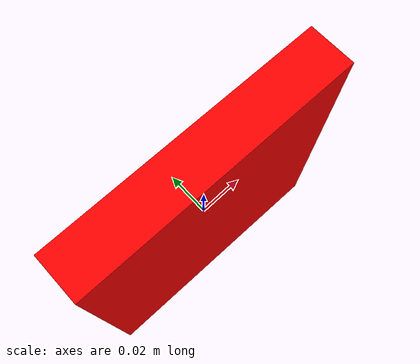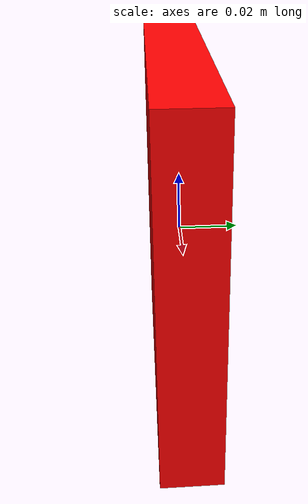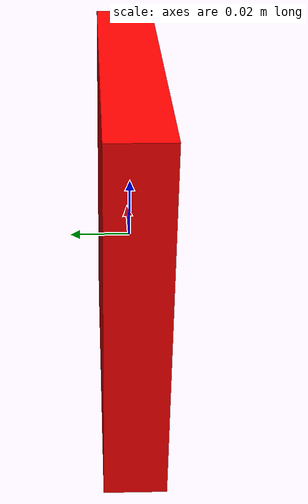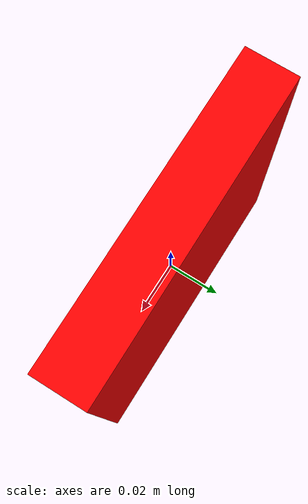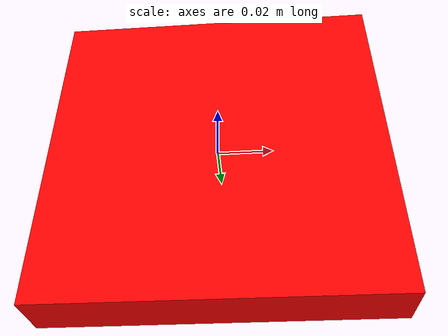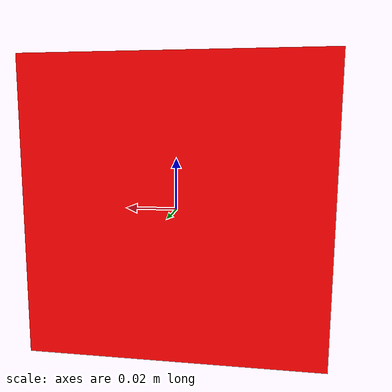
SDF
<?xml version="1.0"?>
    <sdf version="1.7">
      <model name="brick">
        <link name="brick_center">
            <inertial>
                <pose>0 0 0 0 0 0</pose>
                <mass>0.01</mass>
                <inertia>
                <ixx>0.01</ixx><ixy>0.0</ixy><ixz>0.0</ixz>
                                <iyy>0.01</iyy><iyz>0.0</iyz>
                                            <izz>0.001</izz>
                </inertia>
            </inertial>

      <visual name="brick_box">

        <pose> 0 0 0 0 0 0</pose>
        <geometry>
          <box>
            <size>0.12 0.02 0.12</size>
          </box>
        </geometry>

        <!-- Add Material with Red Color -->
        <material>
          <ambient>1 0 0 1</ambient>
          <diffuse>1 0 0 1</diffuse>
          <specular>0 0 0 0</specular>
          <emissive>0 1 0 1</emissive>
        </material>
      </visual>

     <collision name="brick_box">

        <pose> 0 0 0 0 0 0</pose>
        <geometry>
          <box>
            <size>0.12 0.02 0.12</size>
          </box>
        </geometry>

        <drake:proximity_properties>
          <drake:compliant_hydroelastic/>
          <drake:hydroelastic_modulus>1.0e8</drake:hydroelastic_modulus>
        </drake:proximity_properties>
      </collision>

    </link>
  </model>
</sdf>
